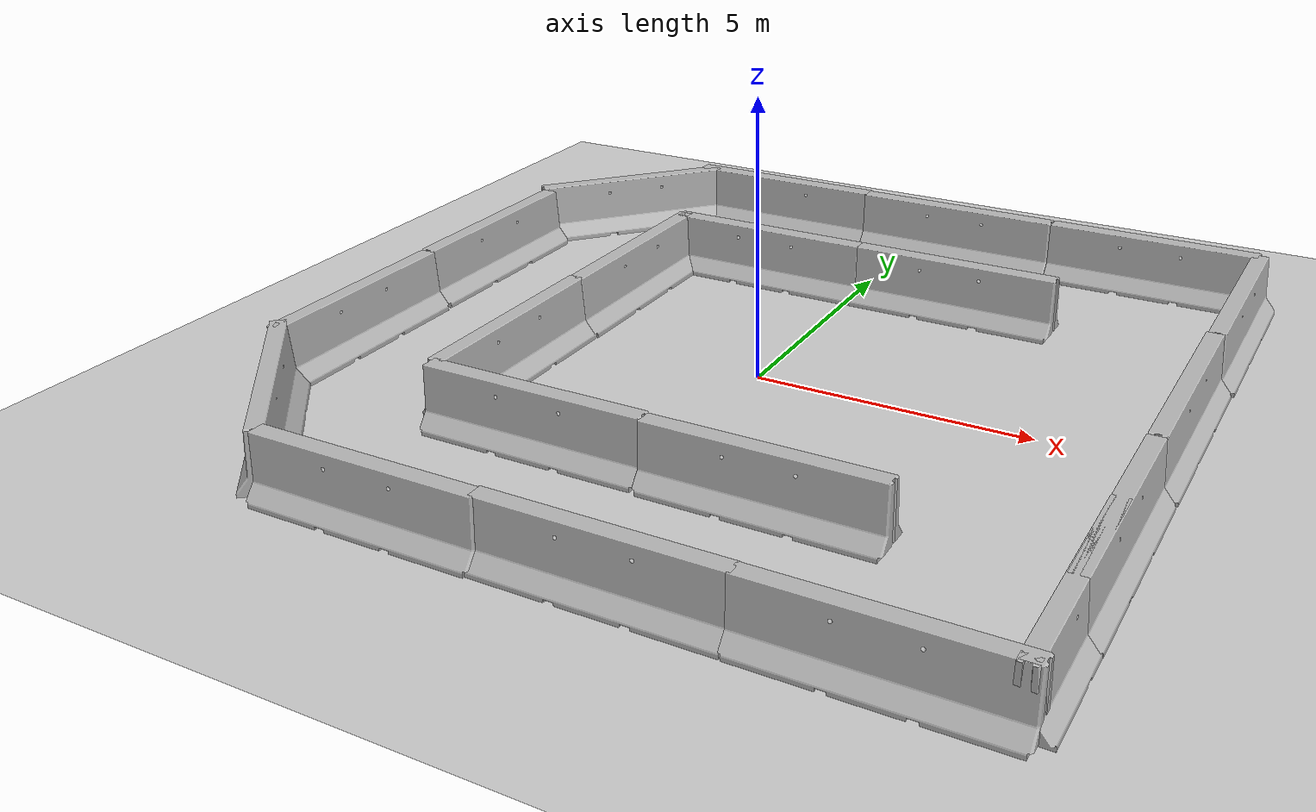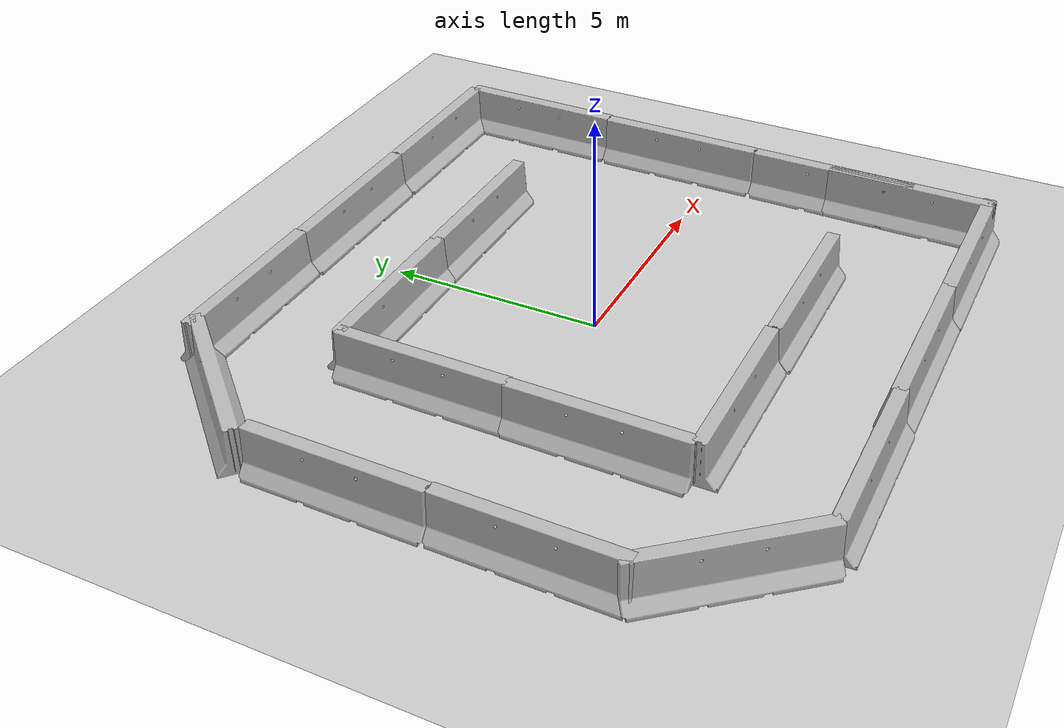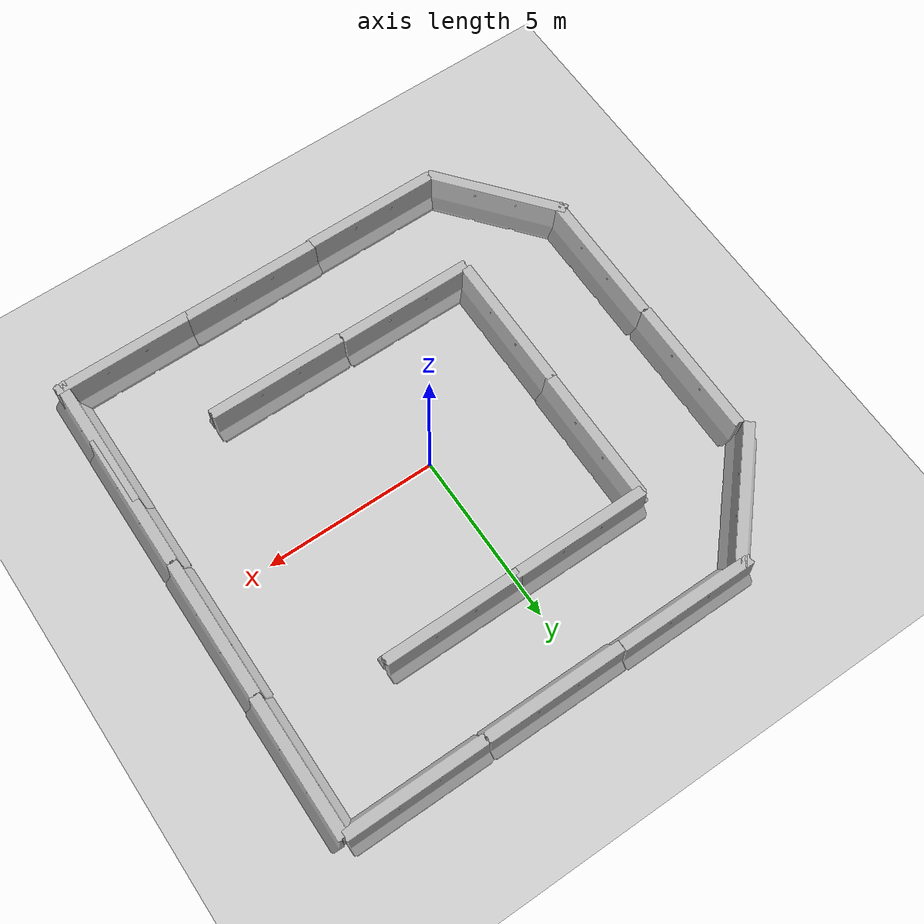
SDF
<sdf version="1.6">
 <world name="default">
  <model name="igvc_basic_ground">
   <static>1</static>
   <link name="link">
    <collision name="collision">
     <geometry><plane><normal>0 0 1</normal><size>50 50</size></plane></geometry>
     <surface><friction><ode><mu>100</mu><mu2>50</mu2></ode></friction></surface>
    </collision>
    <visual name="visual">
     <cast_shadows>0</cast_shadows>
     <geometry><plane><normal>0 0 1</normal><size>50 50</size></plane></geometry>
     <material>
      <script>
       <uri>model://igvc_basic_ground/materials/scripts</uri>
       <uri>model://igvc_basic_ground/materials/textures</uri>
       <name>igvc_basic_ground/Image</name>
      </script>
     </material>
    </visual>
   </link>
  </model>
  <light name="sun" type="directional">
   <pose>0 0 10 0 -0 0</pose>
   <diffuse>0.8 0.8 0.8 1</diffuse>
   <specular>0.2 0.2 0.2 1</specular>
   <attenuation>
    <range>1000</range>
    <constant>0.9</constant>
    <linear>0.01</linear>
    <quadratic>0.001</quadratic>
   </attenuation>
   <direction>-0.5 0.1 -0.9</direction>
  </light>
  <physics name="default_physics" default="0" type="ode">
   <max_step_size>0.001</max_step_size>
   <real_time_factor>5</real_time_factor>
   <real_time_update_rate>1000</real_time_update_rate>
  </physics>
  <gravity>0 0 -9.8</gravity>
  <scene><ambient>0.4 0.4 0.4 1</ambient><background>0.7 0.7 0.7 1</background><shadows>1</shadows></scene>
  <spherical_coordinates>
   <surface_model>EARTH_WGS84</surface_model>
   <latitude_deg>0</latitude_deg>
   <longitude_deg>0</longitude_deg>
   <elevation>0</elevation>
   <heading_deg>0</heading_deg>
  </spherical_coordinates>
  <magnetic_field>6e-06 2.3e-05 -4.2e-05</magnetic_field>
  <atmosphere type="adiabatic"/>
  <model name="jersey_barrier">
   <static>1</static>
   <link name="link">
    <visual name="visual">
     <geometry><mesh><uri>model://jersey_barrier/meshes/jersey_barrier.dae</uri></mesh></geometry>
    </visual>
    <collision name="upright">
     <pose>0 0 0.5715 0 -0 0</pose>
     <geometry><box><size>4.06542 0.3063 1.143</size></box></geometry>
    </collision>
    <collision name="base">
     <pose>0 0 0.032258 0 -0 0</pose>
     <geometry><box><size>4.06542 0.8107 0.064516</size></box></geometry>
    </collision>
    <collision name="base2">
     <pose>0 0 0.1 0 -0 0</pose>
     <geometry><box><size>4.06542 0.65 0.1</size></box></geometry>
    </collision>
    <collision name="base3">
     <pose>0 0 0.2 0 -0 0</pose>
     <geometry><box><size>4.06542 0.5 0.1</size></box></geometry>
    </collision>
    <collision name="left-angle">
     <pose>0 -0.224 0.2401 0.9 -0 0</pose>
     <geometry><box><size>4.06542 0.5 0.064516</size></box></geometry>
    </collision>
    <collision name="right-angle">
     <pose>0 0.224 0.2401 -0.9 0 0</pose>
     <geometry><box><size>4.06542 0.5 0.064516</size></box></geometry>
    </collision>
   </link>
   <pose>-1.84258 4.01164 0 0 -0 0</pose>
  </model>
  <model name="jersey_barrier_0">
   <static>1</static>
   <link name="link">
    <visual name="visual">
     <geometry><mesh><uri>model://jersey_barrier/meshes/jersey_barrier.dae</uri></mesh></geometry>
    </visual>
    <collision name="upright">
     <pose>0 0 0.5715 0 -0 0</pose>
     <geometry><box><size>4.06542 0.3063 1.143</size></box></geometry>
    </collision>
    <collision name="base">
     <pose>0 0 0.032258 0 -0 0</pose>
     <geometry><box><size>4.06542 0.8107 0.064516</size></box></geometry>
    </collision>
    <collision name="base2">
     <pose>0 0 0.1 0 -0 0</pose>
     <geometry><box><size>4.06542 0.65 0.1</size></box></geometry>
    </collision>
    <collision name="base3">
     <pose>0 0 0.2 0 -0 0</pose>
     <geometry><box><size>4.06542 0.5 0.1</size></box></geometry>
    </collision>
    <collision name="left-angle">
     <pose>0 -0.224 0.2401 0.9 -0 0</pose>
     <geometry><box><size>4.06542 0.5 0.064516</size></box></geometry>
    </collision>
    <collision name="right-angle">
     <pose>0 0.224 0.2401 -0.9 0 0</pose>
     <geometry><box><size>4.06542 0.5 0.064516</size></box></geometry>
    </collision>
   </link>
   <pose>-1.88276 -3.98274 0 0 -0 0</pose>
  </model>
  <model name="jersey_barrier_1">
   <static>1</static>
   <link name="link">
    <visual name="visual">
     <geometry><mesh><uri>model://jersey_barrier/meshes/jersey_barrier.dae</uri></mesh></geometry>
    </visual>
    <collision name="upright">
     <pose>0 0 0.5715 0 -0 0</pose>
     <geometry><box><size>4.06542 0.3063 1.143</size></box></geometry>
    </collision>
    <collision name="base">
     <pose>0 0 0.032258 0 -0 0</pose>
     <geometry><box><size>4.06542 0.8107 0.064516</size></box></geometry>
    </collision>
    <collision name="base2">
     <pose>0 0 0.1 0 -0 0</pose>
     <geometry><box><size>4.06542 0.65 0.1</size></box></geometry>
    </collision>
    <collision name="base3">
     <pose>0 0 0.2 0 -0 0</pose>
     <geometry><box><size>4.06542 0.5 0.1</size></box></geometry>
    </collision>
    <collision name="left-angle">
     <pose>0 -0.224 0.2401 0.9 -0 0</pose>
     <geometry><box><size>4.06542 0.5 0.064516</size></box></geometry>
    </collision>
    <collision name="right-angle">
     <pose>0 0.224 0.2401 -0.9 0 0</pose>
     <geometry><box><size>4.06542 0.5 0.064516</size></box></geometry>
    </collision>
   </link>
   <pose>2.05353 4.01665 0 0 -0 0</pose>
  </model>
  <model name="jersey_barrier_2">
   <static>1</static>
   <link name="link">
    <visual name="visual">
     <geometry><mesh><uri>model://jersey_barrier/meshes/jersey_barrier.dae</uri></mesh></geometry>
    </visual>
    <collision name="upright">
     <pose>0 0 0.5715 0 -0 0</pose>
     <geometry><box><size>4.06542 0.3063 1.143</size></box></geometry>
    </collision>
    <collision name="base">
     <pose>0 0 0.032258 0 -0 0</pose>
     <geometry><box><size>4.06542 0.8107 0.064516</size></box></geometry>
    </collision>
    <collision name="base2">
     <pose>0 0 0.1 0 -0 0</pose>
     <geometry><box><size>4.06542 0.65 0.1</size></box></geometry>
    </collision>
    <collision name="base3">
     <pose>0 0 0.2 0 -0 0</pose>
     <geometry><box><size>4.06542 0.5 0.1</size></box></geometry>
    </collision>
    <collision name="left-angle">
     <pose>0 -0.224 0.2401 0.9 -0 0</pose>
     <geometry><box><size>4.06542 0.5 0.064516</size></box></geometry>
    </collision>
    <collision name="right-angle">
     <pose>0 0.224 0.2401 -0.9 0 0</pose>
     <geometry><box><size>4.06542 0.5 0.064516</size></box></geometry>
    </collision>
   </link>
   <pose>2.16507 -4.02844 0 0 -0 0</pose>
  </model>
  <model name="jersey_barrier_3">
   <static>1</static>
   <link name="link">
    <visual name="visual">
     <geometry><mesh><uri>model://jersey_barrier/meshes/jersey_barrier.dae</uri></mesh></geometry>
    </visual>
    <collision name="upright">
     <pose>0 0 0.5715 0 -0 0</pose>
     <geometry><box><size>4.06542 0.3063 1.143</size></box></geometry>
    </collision>
    <collision name="base">
     <pose>0 0 0.032258 0 -0 0</pose>
     <geometry><box><size>4.06542 0.8107 0.064516</size></box></geometry>
    </collision>
    <collision name="base2">
     <pose>0 0 0.1 0 -0 0</pose>
     <geometry><box><size>4.06542 0.65 0.1</size></box></geometry>
    </collision>
    <collision name="base3">
     <pose>0 0 0.2 0 -0 0</pose>
     <geometry><box><size>4.06542 0.5 0.1</size></box></geometry>
    </collision>
    <collision name="left-angle">
     <pose>0 -0.224 0.2401 0.9 -0 0</pose>
     <geometry><box><size>4.06542 0.5 0.064516</size></box></geometry>
    </collision>
    <collision name="right-angle">
     <pose>0 0.224 0.2401 -0.9 0 0</pose>
     <geometry><box><size>4.06542 0.5 0.064516</size></box></geometry>
    </collision>
   </link>
   <pose>5.13707 6.95641 0 0 -0 0</pose>
  </model>
  <model name="jersey_barrier_4">
   <static>1</static>
   <link name="link">
    <visual name="visual">
     <geometry><mesh><uri>model://jersey_barrier/meshes/jersey_barrier.dae</uri></mesh></geometry>
    </visual>
    <collision name="upright">
     <pose>0 0 0.5715 0 -0 0</pose>
     <geometry><box><size>4.06542 0.3063 1.143</size></box></geometry>
    </collision>
    <collision name="base">
     <pose>0 0 0.032258 0 -0 0</pose>
     <geometry><box><size>4.06542 0.8107 0.064516</size></box></geometry>
    </collision>
    <collision name="base2">
     <pose>0 0 0.1 0 -0 0</pose>
     <geometry><box><size>4.06542 0.65 0.1</size></box></geometry>
    </collision>
    <collision name="base3">
     <pose>0 0 0.2 0 -0 0</pose>
     <geometry><box><size>4.06542 0.5 0.1</size></box></geometry>
    </collision>
    <collision name="left-angle">
     <pose>0 -0.224 0.2401 0.9 -0 0</pose>
     <geometry><box><size>4.06542 0.5 0.064516</size></box></geometry>
    </collision>
    <collision name="right-angle">
     <pose>0 0.224 0.2401 -0.9 0 0</pose>
     <geometry><box><size>4.06542 0.5 0.064516</size></box></geometry>
    </collision>
   </link>
   <pose>5.20431 -6.90815 0 0 -0 0</pose>
  </model>
  <model name="jersey_barrier_5">
   <static>1</static>
   <link name="link">
    <visual name="visual">
     <geometry><mesh><uri>model://jersey_barrier/meshes/jersey_barrier.dae</uri></mesh></geometry>
    </visual>
    <collision name="upright">
     <pose>0 0 0.5715 0 -0 0</pose>
     <geometry><box><size>4.06542 0.3063 1.143</size></box></geometry>
    </collision>
    <collision name="base">
     <pose>0 0 0.032258 0 -0 0</pose>
     <geometry><box><size>4.06542 0.8107 0.064516</size></box></geometry>
    </collision>
    <collision name="base2">
     <pose>0 0 0.1 0 -0 0</pose>
     <geometry><box><size>4.06542 0.65 0.1</size></box></geometry>
    </collision>
    <collision name="base3">
     <pose>0 0 0.2 0 -0 0</pose>
     <geometry><box><size>4.06542 0.5 0.1</size></box></geometry>
    </collision>
    <collision name="left-angle">
     <pose>0 -0.224 0.2401 0.9 -0 0</pose>
     <geometry><box><size>4.06542 0.5 0.064516</size></box></geometry>
    </collision>
    <collision name="right-angle">
     <pose>0 0.224 0.2401 -0.9 0 0</pose>
     <geometry><box><size>4.06542 0.5 0.064516</size></box></geometry>
    </collision>
   </link>
   <pose>-3.78145 2.06718 0 0 -0 1.56361</pose>
  </model>
  <model name="jersey_barrier_5_clone">
   <static>1</static>
   <link name="link">
    <visual name="visual">
     <geometry><mesh><uri>model://jersey_barrier/meshes/jersey_barrier.dae</uri></mesh></geometry>
    </visual>
    <collision name="upright">
     <pose>0 0 0.5715 0 -0 0</pose>
     <geometry><box><size>4.06542 0.3063 1.143</size></box></geometry>
    </collision>
    <collision name="base">
     <pose>0 0 0.032258 0 -0 0</pose>
     <geometry><box><size>4.06542 0.8107 0.064516</size></box></geometry>
    </collision>
    <collision name="base2">
     <pose>0 0 0.1 0 -0 0</pose>
     <geometry><box><size>4.06542 0.65 0.1</size></box></geometry>
    </collision>
    <collision name="base3">
     <pose>0 0 0.2 0 -0 0</pose>
     <geometry><box><size>4.06542 0.5 0.1</size></box></geometry>
    </collision>
    <collision name="left-angle">
     <pose>0 -0.224 0.2401 0.9 -0 0</pose>
     <geometry><box><size>4.06542 0.5 0.064516</size></box></geometry>
    </collision>
    <collision name="right-angle">
     <pose>0 0.224 0.2401 -0.9 0 0</pose>
     <geometry><box><size>4.06542 0.5 0.064516</size></box></geometry>
    </collision>
   </link>
   <pose>-3.82937 -1.88096 0 0 -0 1.56361</pose>
  </model>
  <model name="jersey_barrier_5_clone_0">
   <static>1</static>
   <link name="link">
    <visual name="visual">
     <geometry><mesh><uri>model://jersey_barrier/meshes/jersey_barrier.dae</uri></mesh></geometry>
    </visual>
    <collision name="upright">
     <pose>0 0 0.5715 0 -0 0</pose>
     <geometry><box><size>4.06542 0.3063 1.143</size></box></geometry>
    </collision>
    <collision name="base">
     <pose>0 0 0.032258 0 -0 0</pose>
     <geometry><box><size>4.06542 0.8107 0.064516</size></box></geometry>
    </collision>
    <collision name="base2">
     <pose>0 0 0.1 0 -0 0</pose>
     <geometry><box><size>4.06542 0.65 0.1</size></box></geometry>
    </collision>
    <collision name="base3">
     <pose>0 0 0.2 0 -0 0</pose>
     <geometry><box><size>4.06542 0.5 0.1</size></box></geometry>
    </collision>
    <collision name="left-angle">
     <pose>0 -0.224 0.2401 0.9 -0 0</pose>
     <geometry><box><size>4.06542 0.5 0.064516</size></box></geometry>
    </collision>
    <collision name="right-angle">
     <pose>0 0.224 0.2401 -0.9 0 0</pose>
     <geometry><box><size>4.06542 0.5 0.064516</size></box></geometry>
    </collision>
   </link>
   <pose>7.15812 4.97133 0 0 -0 1.56361</pose>
  </model>
  <model name="jersey_barrier_5_clone_1">
   <static>1</static>
   <link name="link">
    <visual name="visual">
     <geometry><mesh><uri>model://jersey_barrier/meshes/jersey_barrier.dae</uri></mesh></geometry>
    </visual>
    <collision name="upright">
     <pose>0 0 0.5715 0 -0 0</pose>
     <geometry><box><size>4.06542 0.3063 1.143</size></box></geometry>
    </collision>
    <collision name="base">
     <pose>0 0 0.032258 0 -0 0</pose>
     <geometry><box><size>4.06542 0.8107 0.064516</size></box></geometry>
    </collision>
    <collision name="base2">
     <pose>0 0 0.1 0 -0 0</pose>
     <geometry><box><size>4.06542 0.65 0.1</size></box></geometry>
    </collision>
    <collision name="base3">
     <pose>0 0 0.2 0 -0 0</pose>
     <geometry><box><size>4.06542 0.5 0.1</size></box></geometry>
    </collision>
    <collision name="left-angle">
     <pose>0 -0.224 0.2401 0.9 -0 0</pose>
     <geometry><box><size>4.06542 0.5 0.064516</size></box></geometry>
    </collision>
    <collision name="right-angle">
     <pose>0 0.224 0.2401 -0.9 0 0</pose>
     <geometry><box><size>4.06542 0.5 0.064516</size></box></geometry>
    </collision>
   </link>
   <pose>7.09704 0.938567 0 0 -0 1.56361</pose>
  </model>
  <model name="jersey_barrier_5_clone_2">
   <static>1</static>
   <link name="link">
    <visual name="visual">
     <geometry><mesh><uri>model://jersey_barrier/meshes/jersey_barrier.dae</uri></mesh></geometry>
    </visual>
    <collision name="upright">
     <pose>0 0 0.5715 0 -0 0</pose>
     <geometry><box><size>4.06542 0.3063 1.143</size></box></geometry>
    </collision>
    <collision name="base">
     <pose>0 0 0.032258 0 -0 0</pose>
     <geometry><box><size>4.06542 0.8107 0.064516</size></box></geometry>
    </collision>
    <collision name="base2">
     <pose>0 0 0.1 0 -0 0</pose>
     <geometry><box><size>4.06542 0.65 0.1</size></box></geometry>
    </collision>
    <collision name="base3">
     <pose>0 0 0.2 0 -0 0</pose>
     <geometry><box><size>4.06542 0.5 0.1</size></box></geometry>
    </collision>
    <collision name="left-angle">
     <pose>0 -0.224 0.2401 0.9 -0 0</pose>
     <geometry><box><size>4.06542 0.5 0.064516</size></box></geometry>
    </collision>
    <collision name="right-angle">
     <pose>0 0.224 0.2401 -0.9 0 0</pose>
     <geometry><box><size>4.06542 0.5 0.064516</size></box></geometry>
    </collision>
   </link>
   <pose>7.05978 -3.12523 0 0 -0 1.56361</pose>
  </model>
  <model name="jersey_barrier_5_clone_3">
   <static>1</static>
   <link name="link">
    <visual name="visual">
     <geometry><mesh><uri>model://jersey_barrier/meshes/jersey_barrier.dae</uri></mesh></geometry>
    </visual>
    <collision name="upright">
     <pose>0 0 0.5715 0 -0 0</pose>
     <geometry><box><size>4.06542 0.3063 1.143</size></box></geometry>
    </collision>
    <collision name="base">
     <pose>0 0 0.032258 0 -0 0</pose>
     <geometry><box><size>4.06542 0.8107 0.064516</size></box></geometry>
    </collision>
    <collision name="base2">
     <pose>0 0 0.1 0 -0 0</pose>
     <geometry><box><size>4.06542 0.65 0.1</size></box></geometry>
    </collision>
    <collision name="base3">
     <pose>0 0 0.2 0 -0 0</pose>
     <geometry><box><size>4.06542 0.5 0.1</size></box></geometry>
    </collision>
    <collision name="left-angle">
     <pose>0 -0.224 0.2401 0.9 -0 0</pose>
     <geometry><box><size>4.06542 0.5 0.064516</size></box></geometry>
    </collision>
    <collision name="right-angle">
     <pose>0 0.224 0.2401 -0.9 0 0</pose>
     <geometry><box><size>4.06542 0.5 0.064516</size></box></geometry>
    </collision>
   </link>
   <pose>7.03904 -5.05089 0 0 -0 1.56361</pose>
  </model>
  <model name="jersey_barrier_6">
   <static>1</static>
   <link name="link">
    <visual name="visual">
     <geometry><mesh><uri>model://jersey_barrier/meshes/jersey_barrier.dae</uri></mesh></geometry>
    </visual>
    <collision name="upright">
     <pose>0 0 0.5715 0 -0 0</pose>
     <geometry><box><size>4.06542 0.3063 1.143</size></box></geometry>
    </collision>
    <collision name="base">
     <pose>0 0 0.032258 0 -0 0</pose>
     <geometry><box><size>4.06542 0.8107 0.064516</size></box></geometry>
    </collision>
    <collision name="base2">
     <pose>0 0 0.1 0 -0 0</pose>
     <geometry><box><size>4.06542 0.65 0.1</size></box></geometry>
    </collision>
    <collision name="base3">
     <pose>0 0 0.2 0 -0 0</pose>
     <geometry><box><size>4.06542 0.5 0.1</size></box></geometry>
    </collision>
    <collision name="left-angle">
     <pose>0 -0.224 0.2401 0.9 -0 0</pose>
     <geometry><box><size>4.06542 0.5 0.064516</size></box></geometry>
    </collision>
    <collision name="right-angle">
     <pose>0 0.224 0.2401 -0.9 0 0</pose>
     <geometry><box><size>4.06542 0.5 0.064516</size></box></geometry>
    </collision>
   </link>
   <pose>1.07595 6.95851 0 0 -0 0</pose>
  </model>
  <model name="jersey_barrier_7">
   <static>1</static>
   <link name="link">
    <visual name="visual">
     <geometry><mesh><uri>model://jersey_barrier/meshes/jersey_barrier.dae</uri></mesh></geometry>
    </visual>
    <collision name="upright">
     <pose>0 0 0.5715 0 -0 0</pose>
     <geometry><box><size>4.06542 0.3063 1.143</size></box></geometry>
    </collision>
    <collision name="base">
     <pose>0 0 0.032258 0 -0 0</pose>
     <geometry><box><size>4.06542 0.8107 0.064516</size></box></geometry>
    </collision>
    <collision name="base2">
     <pose>0 0 0.1 0 -0 0</pose>
     <geometry><box><size>4.06542 0.65 0.1</size></box></geometry>
    </collision>
    <collision name="base3">
     <pose>0 0 0.2 0 -0 0</pose>
     <geometry><box><size>4.06542 0.5 0.1</size></box></geometry>
    </collision>
    <collision name="left-angle">
     <pose>0 -0.224 0.2401 0.9 -0 0</pose>
     <geometry><box><size>4.06542 0.5 0.064516</size></box></geometry>
    </collision>
    <collision name="right-angle">
     <pose>0 0.224 0.2401 -0.9 0 0</pose>
     <geometry><box><size>4.06542 0.5 0.064516</size></box></geometry>
    </collision>
   </link>
   <pose>1.24905 -6.8987 0 0 -0 0</pose>
  </model>
  <model name="jersey_barrier_8">
   <static>1</static>
   <link name="link">
    <visual name="visual">
     <geometry><mesh><uri>model://jersey_barrier/meshes/jersey_barrier.dae</uri></mesh></geometry>
    </visual>
    <collision name="upright">
     <pose>0 0 0.5715 0 -0 0</pose>
     <geometry><box><size>4.06542 0.3063 1.143</size></box></geometry>
    </collision>
    <collision name="base">
     <pose>0 0 0.032258 0 -0 0</pose>
     <geometry><box><size>4.06542 0.8107 0.064516</size></box></geometry>
    </collision>
    <collision name="base2">
     <pose>0 0 0.1 0 -0 0</pose>
     <geometry><box><size>4.06542 0.65 0.1</size></box></geometry>
    </collision>
    <collision name="base3">
     <pose>0 0 0.2 0 -0 0</pose>
     <geometry><box><size>4.06542 0.5 0.1</size></box></geometry>
    </collision>
    <collision name="left-angle">
     <pose>0 -0.224 0.2401 0.9 -0 0</pose>
     <geometry><box><size>4.06542 0.5 0.064516</size></box></geometry>
    </collision>
    <collision name="right-angle">
     <pose>0 0.224 0.2401 -0.9 0 0</pose>
     <geometry><box><size>4.06542 0.5 0.064516</size></box></geometry>
    </collision>
   </link>
   <pose>-2.94573 6.99341 0 0 -0 0</pose>
  </model>
  <model name="jersey_barrier_9">
   <static>1</static>
   <link name="link">
    <visual name="visual">
     <geometry><mesh><uri>model://jersey_barrier/meshes/jersey_barrier.dae</uri></mesh></geometry>
    </visual>
    <collision name="upright">
     <pose>0 0 0.5715 0 -0 0</pose>
     <geometry><box><size>4.06542 0.3063 1.143</size></box></geometry>
    </collision>
    <collision name="base">
     <pose>0 0 0.032258 0 -0 0</pose>
     <geometry><box><size>4.06542 0.8107 0.064516</size></box></geometry>
    </collision>
    <collision name="base2">
     <pose>0 0 0.1 0 -0 0</pose>
     <geometry><box><size>4.06542 0.65 0.1</size></box></geometry>
    </collision>
    <collision name="base3">
     <pose>0 0 0.2 0 -0 0</pose>
     <geometry><box><size>4.06542 0.5 0.1</size></box></geometry>
    </collision>
    <collision name="left-angle">
     <pose>0 -0.224 0.2401 0.9 -0 0</pose>
     <geometry><box><size>4.06542 0.5 0.064516</size></box></geometry>
    </collision>
    <collision name="right-angle">
     <pose>0 0.224 0.2401 -0.9 0 0</pose>
     <geometry><box><size>4.06542 0.5 0.064516</size></box></geometry>
    </collision>
   </link>
   <pose>-2.68964 -6.93194 0 0 -0 0</pose>
  </model>
  <model name="jersey_barrier_5_clone_4">
   <static>1</static>
   <link name="link">
    <visual name="visual">
     <geometry><mesh><uri>model://jersey_barrier/meshes/jersey_barrier.dae</uri></mesh></geometry>
    </visual>
    <collision name="upright">
     <pose>0 0 0.5715 0 -0 0</pose>
     <geometry><box><size>4.06542 0.3063 1.143</size></box></geometry>
    </collision>
    <collision name="base">
     <pose>0 0 0.032258 0 -0 0</pose>
     <geometry><box><size>4.06542 0.8107 0.064516</size></box></geometry>
    </collision>
    <collision name="base2">
     <pose>0 0 0.1 0 -0 0</pose>
     <geometry><box><size>4.06542 0.65 0.1</size></box></geometry>
    </collision>
    <collision name="base3">
     <pose>0 0 0.2 0 -0 0</pose>
     <geometry><box><size>4.06542 0.5 0.1</size></box></geometry>
    </collision>
    <collision name="left-angle">
     <pose>0 -0.224 0.2401 0.9 -0 0</pose>
     <geometry><box><size>4.06542 0.5 0.064516</size></box></geometry>
    </collision>
    <collision name="right-angle">
     <pose>0 0.224 0.2401 -0.9 0 0</pose>
     <geometry><box><size>4.06542 0.5 0.064516</size></box></geometry>
    </collision>
   </link>
   <pose>-7.08661 1.94027 0 0 -0 1.56361</pose>
  </model>
  <model name="jersey_barrier_5_clone_5">
   <static>1</static>
   <link name="link">
    <visual name="visual">
     <geometry><mesh><uri>model://jersey_barrier/meshes/jersey_barrier.dae</uri></mesh></geometry>
    </visual>
    <collision name="upright">
     <pose>0 0 0.5715 0 -0 0</pose>
     <geometry><box><size>4.06542 0.3063 1.143</size></box></geometry>
    </collision>
    <collision name="base">
     <pose>0 0 0.032258 0 -0 0</pose>
     <geometry><box><size>4.06542 0.8107 0.064516</size></box></geometry>
    </collision>
    <collision name="base2">
     <pose>0 0 0.1 0 -0 0</pose>
     <geometry><box><size>4.06542 0.65 0.1</size></box></geometry>
    </collision>
    <collision name="base3">
     <pose>0 0 0.2 0 -0 0</pose>
     <geometry><box><size>4.06542 0.5 0.1</size></box></geometry>
    </collision>
    <collision name="left-angle">
     <pose>0 -0.224 0.2401 0.9 -0 0</pose>
     <geometry><box><size>4.06542 0.5 0.064516</size></box></geometry>
    </collision>
    <collision name="right-angle">
     <pose>0 0.224 0.2401 -0.9 0 0</pose>
     <geometry><box><size>4.06542 0.5 0.064516</size></box></geometry>
    </collision>
   </link>
   <pose>-7.0866 -2.11579 0 0 -0 1.56361</pose>
  </model>
  <model name="jersey_barrier_10">
   <static>1</static>
   <link name="link">
    <visual name="visual">
     <geometry><mesh><uri>model://jersey_barrier/meshes/jersey_barrier.dae</uri></mesh></geometry>
    </visual>
    <collision name="upright">
     <pose>0 0 0.5715 0 -0 0</pose>
     <geometry><box><size>4.06542 0.3063 1.143</size></box></geometry>
    </collision>
    <collision name="base">
     <pose>0 0 0.032258 0 -0 0</pose>
     <geometry><box><size>4.06542 0.8107 0.064516</size></box></geometry>
    </collision>
    <collision name="base2">
     <pose>0 0 0.1 0 -0 0</pose>
     <geometry><box><size>4.06542 0.65 0.1</size></box></geometry>
    </collision>
    <collision name="base3">
     <pose>0 0 0.2 0 -0 0</pose>
     <geometry><box><size>4.06542 0.5 0.1</size></box></geometry>
    </collision>
    <collision name="left-angle">
     <pose>0 -0.224 0.2401 0.9 -0 0</pose>
     <geometry><box><size>4.06542 0.5 0.064516</size></box></geometry>
    </collision>
    <collision name="right-angle">
     <pose>0 0.224 0.2401 -0.9 0 0</pose>
     <geometry><box><size>4.06542 0.5 0.064516</size></box></geometry>
    </collision>
   </link>
   <pose>-5.96304 5.55252 0 0 -0 0.831786</pose>
  </model>
  <model name="jersey_barrier_11">
   <static>1</static>
   <link name="link">
    <visual name="visual">
     <geometry><mesh><uri>model://jersey_barrier/meshes/jersey_barrier.dae</uri></mesh></geometry>
    </visual>
    <collision name="upright">
     <pose>0 0 0.5715 0 -0 0</pose>
     <geometry><box><size>4.06542 0.3063 1.143</size></box></geometry>
    </collision>
    <collision name="base">
     <pose>0 0 0.032258 0 -0 0</pose>
     <geometry><box><size>4.06542 0.8107 0.064516</size></box></geometry>
    </collision>
    <collision name="base2">
     <pose>0 0 0.1 0 -0 0</pose>
     <geometry><box><size>4.06542 0.65 0.1</size></box></geometry>
    </collision>
    <collision name="base3">
     <pose>0 0 0.2 0 -0 0</pose>
     <geometry><box><size>4.06542 0.5 0.1</size></box></geometry>
    </collision>
    <collision name="left-angle">
     <pose>0 -0.224 0.2401 0.9 -0 0</pose>
     <geometry><box><size>4.06542 0.5 0.064516</size></box></geometry>
    </collision>
    <collision name="right-angle">
     <pose>0 0.224 0.2401 -0.9 0 0</pose>
     <geometry><box><size>4.06542 0.5 0.064516</size></box></geometry>
    </collision>
   </link>
   <pose>-5.95861 -5.42271 0 0 0 -0.884896</pose>
  </model>
 </world>
</sdf>
